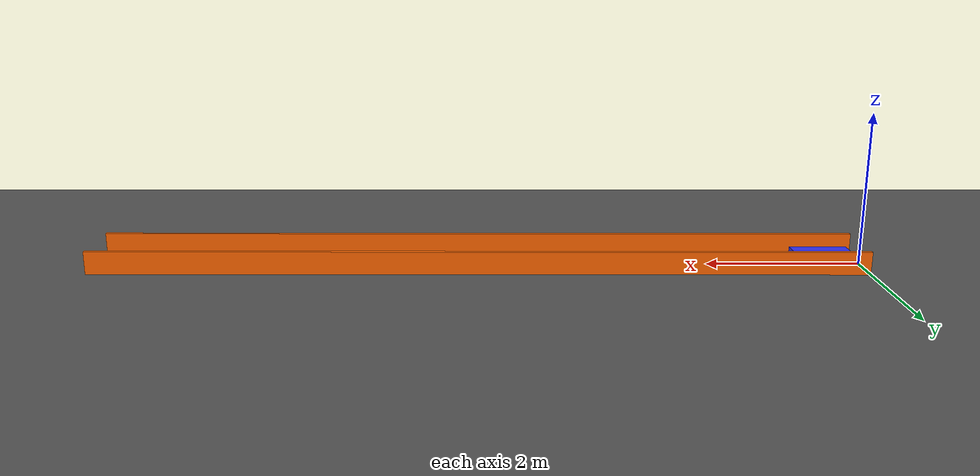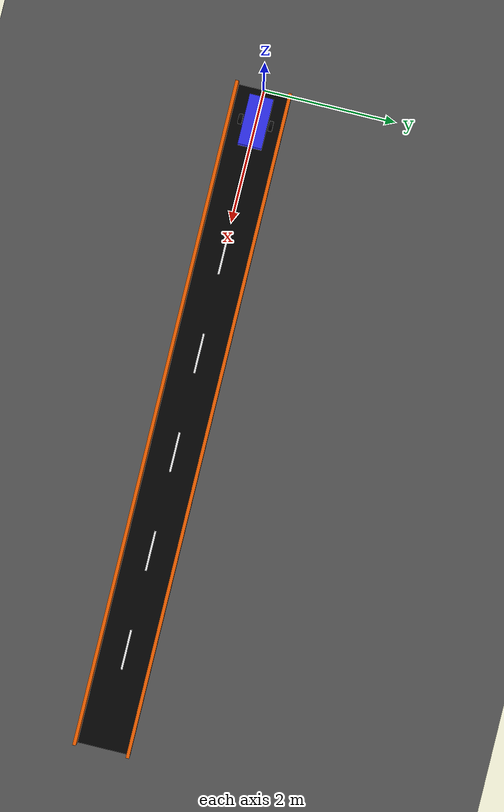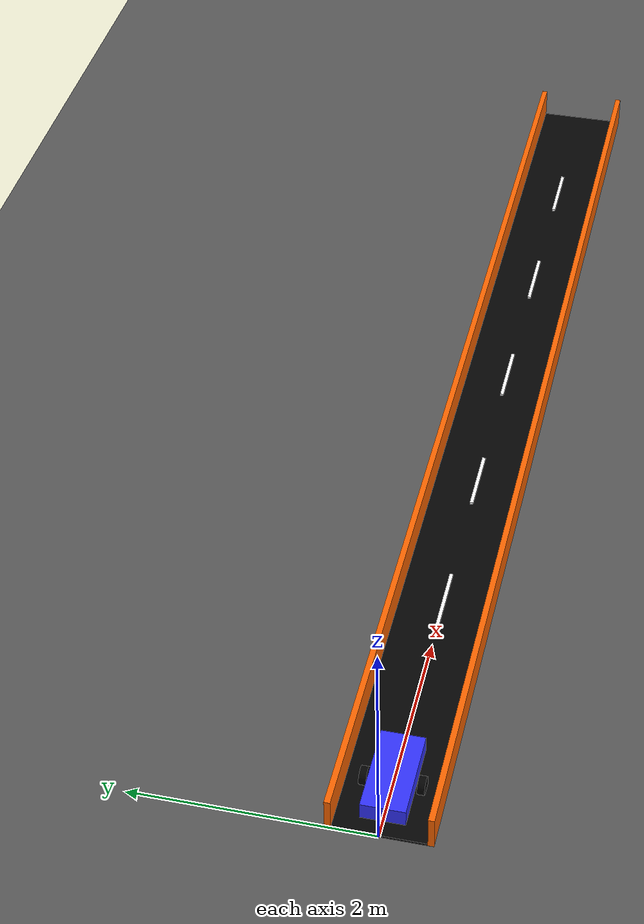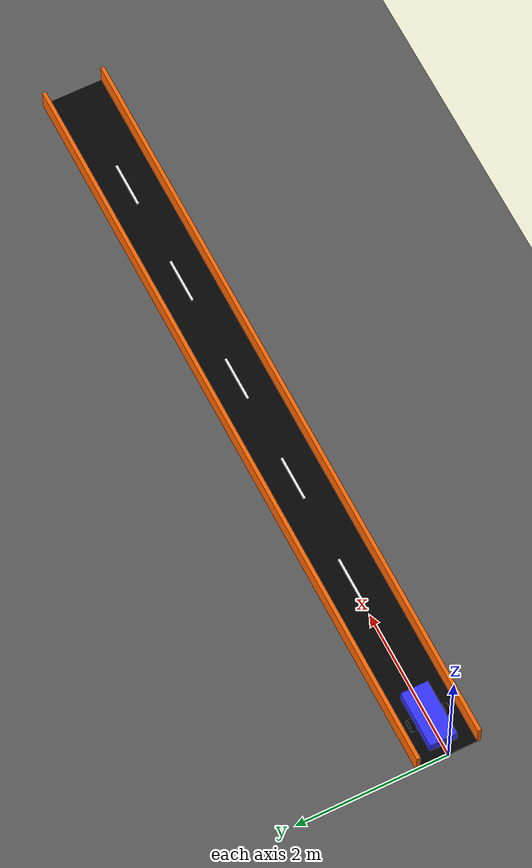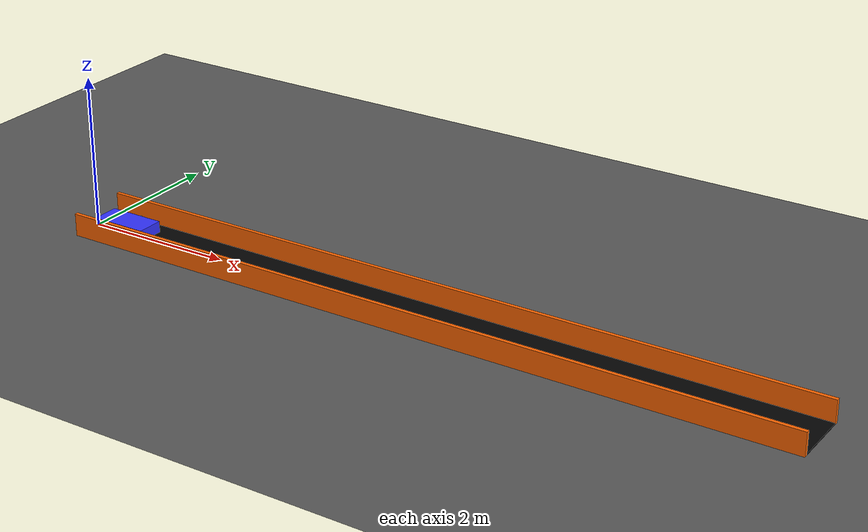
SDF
<?xml version="1.0" ?>
<sdf version="1.8">
  <world name="empty_track_world">

    <physics name="1ms" type="ignored">
      <max_step_size>0.001</max_step_size>
      <real_time_factor>1.0</real_time_factor>
    </physics>

    <plugin
      filename="gz-sim-physics-system"
      name="gz::sim::systems::Physics">
    </plugin>

    <plugin
      filename="gz-sim-user-commands-system"
      name="gz::sim::systems::UserCommands">
    </plugin>

    <plugin
      filename="gz-sim-scene-broadcaster-system"
      name="gz::sim::systems::SceneBroadcaster">
    </plugin>

    <light type="directional" name="sun">
      <cast_shadows>true</cast_shadows>
      <pose>0 0 10 0 0 0</pose>
      <diffuse>0.8 0.8 0.8 1</diffuse>
      <specular>0.2 0.2 0.2 1</specular>
      <attenuation>
        <range>1000</range>
        <constant>0.9</constant>
        <linear>0.01</linear>
        <quadratic>0.001</quadratic>
      </attenuation>
      <direction>-0.5 0.1 -0.9</direction>
    </light>

    <model name="ground_plane">
      <static>true</static>
      <link name="link">
        <collision name="collision">
          <geometry>
            <plane>
              <normal>0 0 1</normal>
              <size>20 10</size>
            </plane>
          </geometry>
        </collision>
        <visual name="visual">
          <geometry>
            <plane>
              <normal>0 0 1</normal>
              <size>20 10</size>
            </plane>
          </geometry>
          <material>
            <ambient>0.35 0.35 0.35 1</ambient>
            <diffuse>0.35 0.35 0.35 1</diffuse>
          </material>
        </visual>
      </link>
    </model>

    <!-- Track road: 10 m long, 0.75 m wide -->
    <model name="road">
      <static>true</static>
      <pose>5 0 0.01 0 0 0</pose>
      <link name="road_link">
        <visual name="road_visual">
          <geometry>
            <box>
              <size>10 0.75 0.02</size>
            </box>
          </geometry>
          <material>
            <ambient>0.02 0.02 0.02 1</ambient>
            <diffuse>0.02 0.02 0.02 1</diffuse>
          </material>
        </visual>
      </link>
    </model>

    <!-- Center dashed lane divider -->
    <model name="lane_divider_1">
      <static>true</static>
      <pose>1 0 0.04 0 0 0</pose>
      <link name="link">
        <visual name="visual">
          <geometry>
            <box>
              <size>0.6 0.03 0.02</size>
            </box>
          </geometry>
          <material>
            <ambient>1 1 1 1</ambient>
            <diffuse>1 1 1 1</diffuse>
          </material>
        </visual>
      </link>
    </model>

    <model name="lane_divider_2">
      <static>true</static>
      <pose>2.5 0 0.04 0 0 0</pose>
      <link name="link">
        <visual name="visual">
          <geometry>
            <box>
              <size>0.6 0.03 0.02</size>
            </box>
          </geometry>
          <material>
            <ambient>1 1 1 1</ambient>
            <diffuse>1 1 1 1</diffuse>
          </material>
        </visual>
      </link>
    </model>

    <model name="lane_divider_3">
      <static>true</static>
      <pose>4 0 0.04 0 0 0</pose>
      <link name="link">
        <visual name="visual">
          <geometry>
            <box>
              <size>0.6 0.03 0.02</size>
            </box>
          </geometry>
          <material>
            <ambient>1 1 1 1</ambient>
            <diffuse>1 1 1 1</diffuse>
          </material>
        </visual>
      </link>
    </model>

    <model name="lane_divider_4">
      <static>true</static>
      <pose>5.5 0 0.04 0 0 0</pose>
      <link name="link">
        <visual name="visual">
          <geometry>
            <box>
              <size>0.6 0.03 0.02</size>
            </box>
          </geometry>
          <material>
            <ambient>1 1 1 1</ambient>
            <diffuse>1 1 1 1</diffuse>
          </material>
        </visual>
      </link>
    </model>

    <model name="lane_divider_5">
      <static>true</static>
      <pose>7 0 0.04 0 0 0</pose>
      <link name="link">
        <visual name="visual">
          <geometry>
            <box>
              <size>0.6 0.03 0.02</size>
            </box>
          </geometry>
          <material>
            <ambient>1 1 1 1</ambient>
            <diffuse>1 1 1 1</diffuse>
          </material>
        </visual>
      </link>
    </model>

    <model name="lane_divider_6">
      <static>true</static>
      <pose>8.5 0 0.04 0 0 0</pose>
      <link name="link">
        <visual name="visual">
          <geometry>
            <box>
              <size>0.6 0.03 0.02</size>
            </box>
          </geometry>
          <material>
            <ambient>1 1 1 1</ambient>
            <diffuse>1 1 1 1</diffuse>
          </material>
        </visual>
      </link>
    </model>

    <!-- Side walls -->
    <model name="left_wall">
      <static>true</static>
      <pose>5 0.4 0.15 0 0 0</pose>
      <link name="link">
        <collision name="collision">
          <geometry>
            <box>
              <size>10 0.05 0.3</size>
            </box>
          </geometry>
        </collision>
        <visual name="visual">
          <geometry>
            <box>
              <size>10 0.05 0.3</size>
            </box>
          </geometry>
          <material>
            <ambient>1 0.4 0 1</ambient>
            <diffuse>1 0.4 0 1</diffuse>
          </material>
        </visual>
      </link>
    </model>

    <model name="right_wall">
      <static>true</static>
      <pose>5 -0.4 0.15 0 0 0</pose>
      <link name="link">
        <collision name="collision">
          <geometry>
            <box>
              <size>10 0.05 0.3</size>
            </box>
          </geometry>
        </collision>
        <visual name="visual">
          <geometry>
            <box>
              <size>10 0.05 0.3</size>
            </box>
          </geometry>
          <material>
            <ambient>1 0.4 0 1</ambient>
            <diffuse>1 0.4 0 1</diffuse>
          </material>
        </visual>
      </link>
    </model>

    <!-- Small vehicle suitable for 0.75 m track -->
    <model name="vehicle_blue">
      <pose>0.50 0 0.11 0 0 3.14159</pose>

      <link name="base_link">
        <inertial>
          <mass>1.0</mass>
          <inertia>
            <ixx>0.01</ixx>
            <iyy>0.01</iyy>
            <izz>0.01</izz>
          </inertia>
        </inertial>

        <collision name="base_collision">
          <geometry>
            <box>
              <size>0.75 0.36 0.15</size>
            </box>
          </geometry>
        </collision>

        <visual name="base_visual">
          <geometry>
            <box>
              <size>0.75 0.36 0.15</size>
            </box>
          </geometry>
          <material>
            <ambient>0.2 0.2 1.0 1</ambient>
            <diffuse>0.2 0.2 1.0 1</diffuse>
          </material>
        </visual>
      </link>

      <!-- Left wheel -->
      <link name="left_wheel">
        <pose>0 0.23 -0.04 1.5708 0 0</pose>
        <inertial>
          <mass>0.1</mass>
          <inertia>
            <ixx>0.001</ixx>
            <iyy>0.001</iyy>
            <izz>0.001</izz>
          </inertia>
        </inertial>

        <collision name="collision">
          <geometry>
            <cylinder>
              <radius>0.075</radius>
              <length>0.06</length>
            </cylinder>
          </geometry>
        </collision>

        <visual name="visual">
          <geometry>
            <cylinder>
              <radius>0.075</radius>
              <length>0.06</length>
            </cylinder>
          </geometry>
          <material>
            <ambient>0.02 0.02 0.02 1</ambient>
            <diffuse>0.02 0.02 0.02 1</diffuse>
          </material>
        </visual>
      </link>

      <!-- Right wheel -->
      <link name="right_wheel">
        <pose>0 -0.23 -0.04 1.5708 0 0</pose>
        <inertial>
          <mass>0.1</mass>
          <inertia>
            <ixx>0.001</ixx>
            <iyy>0.001</iyy>
            <izz>0.001</izz>
          </inertia>
        </inertial>

        <collision name="collision">
          <geometry>
            <cylinder>
              <radius>0.075</radius>
              <length>0.06</length>
            </cylinder>
          </geometry>
        </collision>

        <visual name="visual">
          <geometry>
            <cylinder>
              <radius>0.075</radius>
              <length>0.06</length>
            </cylinder>
          </geometry>
          <material>
            <ambient>0.02 0.02 0.02 1</ambient>
            <diffuse>0.02 0.02 0.02 1</diffuse>
          </material>
        </visual>
      </link>

      <joint name="left_wheel_joint" type="revolute">
        <parent>base_link</parent>
        <child>left_wheel</child>
        <axis>
          <xyz>0 0 1</xyz>
        </axis>
      </joint>

      <joint name="right_wheel_joint" type="revolute">
        <parent>base_link</parent>
        <child>right_wheel</child>
        <axis>
          <xyz>0 0 1</xyz>
        </axis>
      </joint>

      <plugin
        filename="gz-sim-diff-drive-system"
        name="gz::sim::systems::DiffDrive">

        <left_joint>left_wheel_joint</left_joint>
        <right_joint>right_wheel_joint</right_joint>
        <wheel_separation>0.46</wheel_separation>
        <wheel_radius>0.075</wheel_radius>

        <odom_publish_frequency>30</odom_publish_frequency>
        <topic>/model/vehicle_blue/cmd_vel</topic>
        <odom_topic>/model/vehicle_blue/odometry</odom_topic>
        <tf_topic>/model/vehicle_blue/tf</tf_topic>

        <frame_id>odom</frame_id>
        <child_frame_id>vehicle_blue/base_link</child_frame_id>
      </plugin>
    </model>

  </world>
</sdf>
